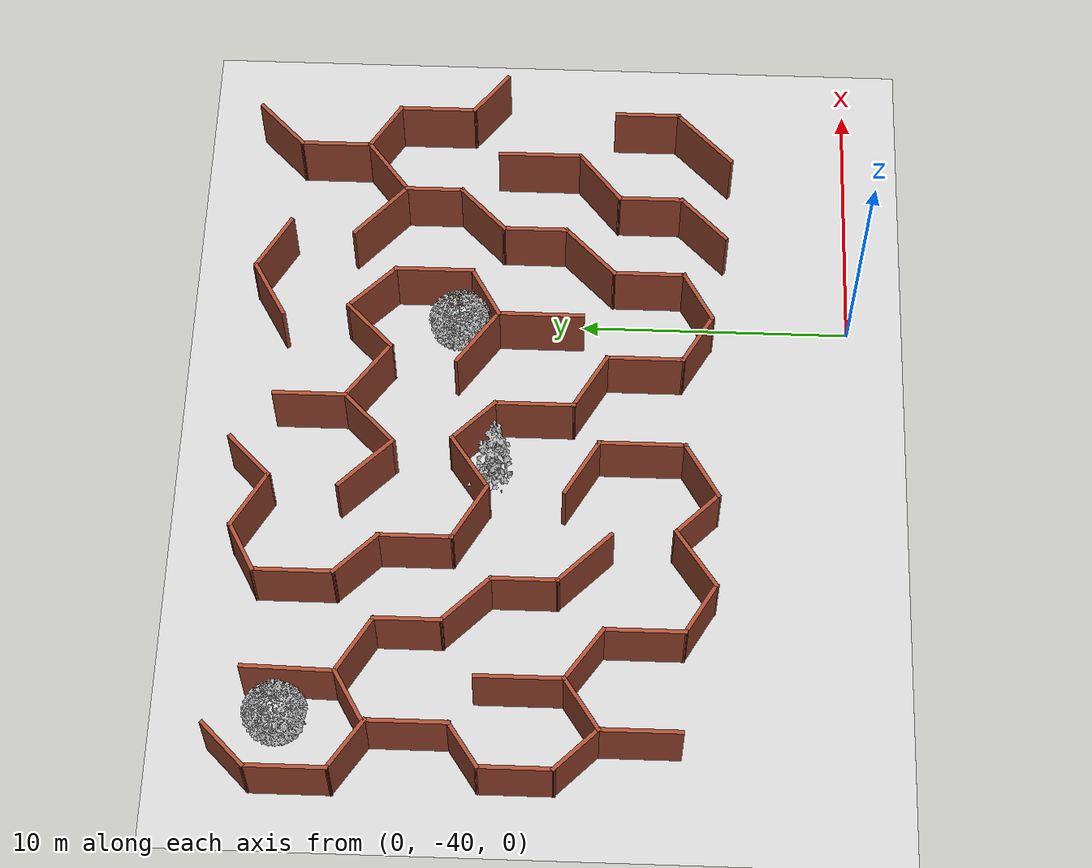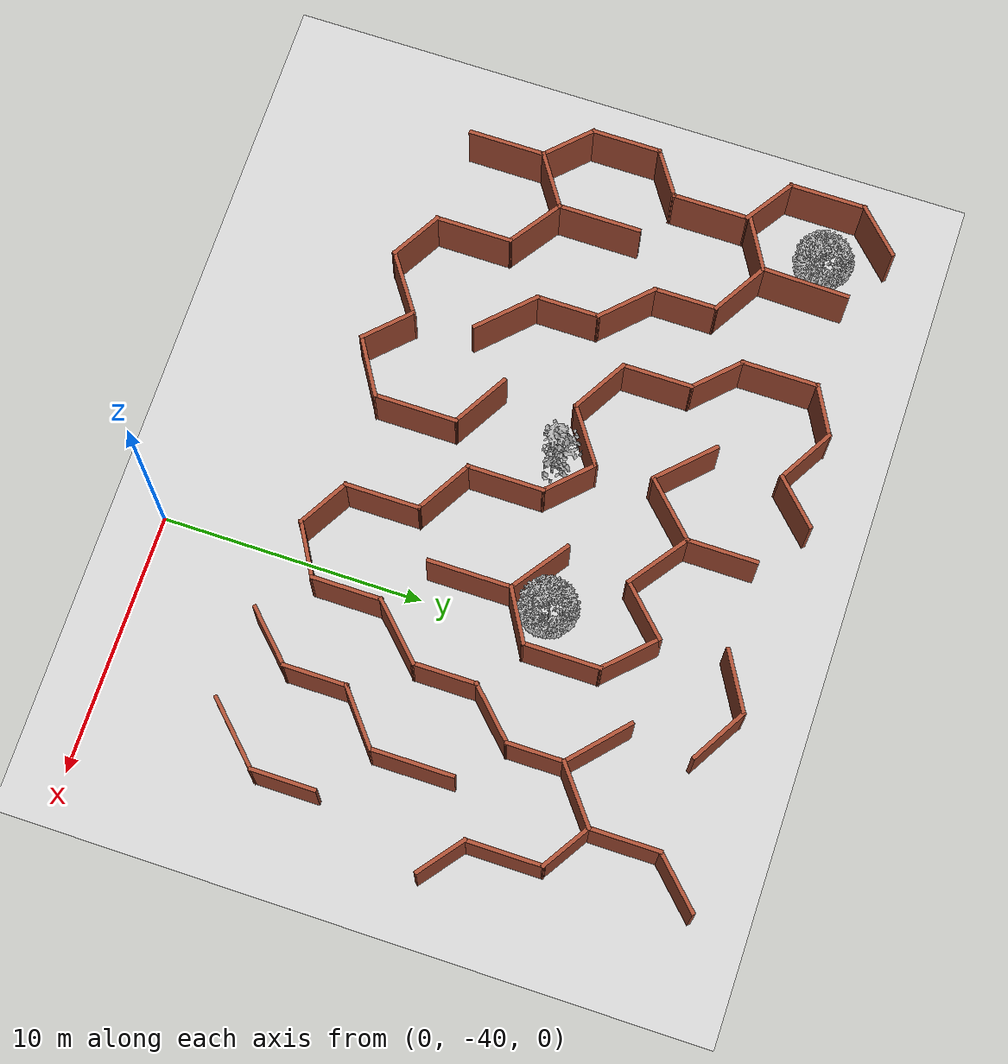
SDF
<sdf version="1.6">
 <world name="default">
  <model name="maze_rect_3">
   <pose>4e-06 -9.9e-05 0 0 -0 1.57001</pose>
   <link name="Wall_464">
    <collision name="Wall_464_Collision">
     <geometry><box><size>2.20335 0.15 2.5</size></box></geometry>
     <pose>0 0 1.25 0 -0 0</pose>
    </collision>
    <visual name="Wall_464_Visual">
     <pose>0 0 1.25 0 -0 0</pose>
     <geometry><box><size>2.20335 0.15 2.5</size></box></geometry>
     <material>
      <script><uri>file://media/materials/scripts/gazebo.material</uri><name>Gazebo/Bricks</name></script>
      <ambient>1 1 1 1</ambient>
     </material>
     <meta><layer>0</layer></meta>
    </visual>
    <pose>-22.1941 -7.33195 0 0 -0 1.01213</pose>
   </link>
   <link name="Wall_465">
    <collision name="Wall_465_Collision">
     <geometry><box><size>2.75 0.15 2.5</size></box></geometry>
     <pose>0 0 1.25 0 -0 0</pose>
    </collision>
    <visual name="Wall_465_Visual">
     <pose>0 0 1.25 0 -0 0</pose>
     <geometry><box><size>2.75 0.15 2.5</size></box></geometry>
     <material>
      <script><uri>file://media/materials/scripts/gazebo.material</uri><name>Gazebo/Bricks</name></script>
      <ambient>1 1 1 1</ambient>
     </material>
     <meta><layer>0</layer></meta>
    </visual>
    <pose>-20.3499 -6.46136 0 0 -0 0</pose>
   </link>
   <link name="Wall_466">
    <collision name="Wall_466_Collision">
     <geometry><box><size>2.5 0.15 2.5</size></box></geometry>
     <pose>0 0 1.25 0 -0 0</pose>
    </collision>
    <visual name="Wall_466_Visual">
     <pose>0 0 1.25 0 -0 0</pose>
     <geometry><box><size>2.5 0.15 2.5</size></box></geometry>
     <material>
      <script><uri>file://media/materials/scripts/gazebo.material</uri><name>Gazebo/Bricks</name></script>
      <ambient>1 1 1 1</ambient>
     </material>
     <meta><layer>0</layer></meta>
    </visual>
    <pose>-18.2191 -7.29221 0 0 -0 -0.785398</pose>
   </link>
   <link name="Wall_486">
    <collision name="Wall_486_Collision">
     <geometry><box><size>2.5 0.15 2.5</size></box></geometry>
     <pose>0 0 1.25 0 -0 0</pose>
    </collision>
    <visual name="Wall_486_Visual">
     <pose>0 0 1.25 0 -0 0</pose>
     <geometry><box><size>2.5 0.15 2.5</size></box></geometry>
     <material>
      <script><uri>file://media/materials/scripts/gazebo.material</uri><name>Gazebo/Bricks</name></script>
      <ambient>1 1 1 1</ambient>
     </material>
     <meta><layer>0</layer></meta>
    </visual>
    <pose>-18.3255 -1.92642 0 0 -0 1.0472</pose>
   </link>
   <link name="Wall_487">
    <collision name="Wall_487_Collision">
     <geometry><box><size>2.5 0.15 2.5</size></box></geometry>
     <pose>0 0 1.25 0 -0 0</pose>
    </collision>
    <visual name="Wall_487_Visual">
     <pose>0 0 1.25 0 -0 0</pose>
     <geometry><box><size>2.5 0.15 2.5</size></box></geometry>
     <material>
      <script><uri>file://media/materials/scripts/gazebo.material</uri><name>Gazebo/Bricks</name></script>
      <ambient>1 1 1 1</ambient>
     </material>
     <meta><layer>0</layer></meta>
    </visual>
    <pose>-18.3255 0.108739 0 0 -0 2.0944</pose>
   </link>
   <link name="Wall_534">
    <collision name="Wall_534_Collision">
     <geometry><box><size>2.14672 0.15 2.5</size></box></geometry>
     <pose>0 0 1.25 0 -0 0</pose>
    </collision>
    <visual name="Wall_534_Visual">
     <pose>0 0 1.25 0 -0 0</pose>
     <geometry><box><size>2.14672 0.15 2.5</size></box></geometry>
     <material>
      <script><uri>file://media/materials/scripts/gazebo.material</uri><name>Gazebo/Bricks</name></script>
      <ambient>1 1 1 1</ambient>
     </material>
     <meta><layer>0</layer></meta>
    </visual>
    <pose>-26.1824 -8.99348 0 0 -0 0.914495</pose>
   </link>
   <link name="Wall_535">
    <collision name="Wall_535_Collision">
     <geometry><box><size>3 0.15 2.5</size></box></geometry>
     <pose>0 0 1.25 0 -0 0</pose>
    </collision>
    <visual name="Wall_535_Visual">
     <pose>0 0 1.25 0 -0 0</pose>
     <geometry><box><size>3 0.15 2.5</size></box></geometry>
     <material>
      <script><uri>file://media/materials/scripts/gazebo.material</uri><name>Gazebo/Bricks</name></script>
      <ambient>1 1 1 1</ambient>
     </material>
     <meta><layer>0</layer></meta>
    </visual>
    <pose>-24.1482 -8.20252 0 0 -0 0</pose>
   </link>
   <link name="Wall_540">
    <collision name="Wall_540_Collision">
     <geometry><box><size>2.5 0.15 2.5</size></box></geometry>
     <pose>0 0 1.25 0 -0 0</pose>
    </collision>
    <visual name="Wall_540_Visual">
     <pose>0 0 1.25 0 -0 0</pose>
     <geometry><box><size>2.5 0.15 2.5</size></box></geometry>
     <material>
      <script><uri>file://media/materials/scripts/gazebo.material</uri><name>Gazebo/Bricks</name></script>
      <ambient>1 1 1 1</ambient>
     </material>
     <meta><layer>0</layer></meta>
    </visual>
    <pose>-34.4329 -3.51756 0 0 -0 -0.785398</pose>
   </link>
   <link name="Wall_542">
    <collision name="Wall_542_Collision">
     <geometry><box><size>3 0.15 2.5</size></box></geometry>
     <pose>0 0 1.25 0 -0 0</pose>
    </collision>
    <visual name="Wall_542_Visual">
     <pose>0 0 1.25 0 -0 0</pose>
     <geometry><box><size>3 0.15 2.5</size></box></geometry>
     <material>
      <script><uri>file://media/materials/scripts/gazebo.material</uri><name>Gazebo/Bricks</name></script>
      <ambient>1 1 1 1</ambient>
     </material>
     <meta><layer>0</layer></meta>
    </visual>
    <pose>-34.4329 -7.19452 0 0 -0 -0.785398</pose>
   </link>
   <link name="Wall_543">
    <collision name="Wall_543_Collision">
     <geometry><box><size>2.5 0.15 2.5</size></box></geometry>
     <pose>0 0 1.25 0 -0 0</pose>
    </collision>
    <visual name="Wall_543_Visual">
     <pose>0 0 1.25 0 -0 0</pose>
     <geometry><box><size>2.5 0.15 2.5</size></box></geometry>
     <material>
      <script><uri>file://media/materials/scripts/gazebo.material</uri><name>Gazebo/Bricks</name></script>
      <ambient>1 1 1 1</ambient>
     </material>
     <meta><layer>0</layer></meta>
    </visual>
    <pose>-32.2503 -8.20215 0 0 -0 0</pose>
   </link>
   <link name="Wall_547">
    <collision name="Wall_547_Collision">
     <geometry><box><size>3.15852 0.15 2.5</size></box></geometry>
     <pose>0 0 1.25 0 -0 0</pose>
    </collision>
    <visual name="Wall_547_Visual">
     <pose>0 0 1.25 0 -0 0</pose>
     <geometry><box><size>3.15852 0.15 2.5</size></box></geometry>
     <material>
      <script><uri>file://media/materials/scripts/gazebo.material</uri><name>Gazebo/Bricks</name></script>
      <ambient>1 1 1 1</ambient>
     </material>
     <meta><layer>0</layer></meta>
    </visual>
    <pose>-28.1709 -6.21856 0 0 -0 3.14159</pose>
   </link>
   <link name="Wall_548">
    <collision name="Wall_548_Collision">
     <geometry><box><size>2.56699 0.15 2.5</size></box></geometry>
     <pose>0 0 1.25 0 -0 0</pose>
    </collision>
    <visual name="Wall_548_Visual">
     <pose>0 0 1.25 0 -0 0</pose>
     <geometry><box><size>2.56699 0.15 2.5</size></box></geometry>
     <material>
      <script><uri>file://media/materials/scripts/gazebo.material</uri><name>Gazebo/Bricks</name></script>
      <ambient>1 1 1 1</ambient>
     </material>
     <meta><layer>0</layer></meta>
    </visual>
    <pose>-30.4865 -5.28349 0 0 -0 2.25685</pose>
   </link>
   <link name="Wall_549">
    <collision name="Wall_549_Collision">
     <geometry><box><size>2.5 0.15 2.5</size></box></geometry>
     <pose>0 0 1.25 0 -0 0</pose>
    </collision>
    <visual name="Wall_549_Visual">
     <pose>0 0 1.25 0 -0 0</pose>
     <geometry><box><size>2.5 0.15 2.5</size></box></geometry>
     <material>
      <script><uri>file://media/materials/scripts/gazebo.material</uri><name>Gazebo/Bricks</name></script>
      <ambient>1 1 1 1</ambient>
     </material>
     <meta><layer>0</layer></meta>
    </visual>
    <pose>-32.4271 -4.34841 0 0 -0 3.14159</pose>
   </link>
   <link name="Wall_55">
    <collision name="Wall_55_Collision">
     <geometry><box><size>3 0.15 2.5</size></box></geometry>
     <pose>0 0 1.25 0 -0 0</pose>
    </collision>
    <visual name="Wall_55_Visual">
     <pose>0 0 1.25 0 -0 0</pose>
     <geometry><box><size>3 0.15 2.5</size></box></geometry>
     <material>
      <script><uri>file://media/materials/scripts/gazebo.material</uri><name>Gazebo/Bricks</name></script>
      <ambient>1 1 1 1</ambient>
     </material>
     <meta><layer>0</layer></meta>
    </visual>
    <pose>-32.4179 17.2051 0 0 -0 0</pose>
   </link>
   <link name="Wall_56">
    <collision name="Wall_56_Collision">
     <geometry><box><size>2.25 0.15 2.5</size></box></geometry>
     <pose>0 0 1.25 0 -0 0</pose>
    </collision>
    <visual name="Wall_56_Visual">
     <pose>0 0 1.25 0 -0 0</pose>
     <geometry><box><size>2.25 0.15 2.5</size></box></geometry>
     <material>
      <script><uri>file://media/materials/scripts/gazebo.material</uri><name>Gazebo/Bricks</name></script>
      <ambient>1 1 1 1</ambient>
     </material>
     <meta><layer>0</layer></meta>
    </visual>
    <pose>-30.2504 17.9476 0 0 -0 0.785398</pose>
   </link>
   <link name="Wall_57">
    <collision name="Wall_57_Collision">
     <geometry><box><size>2.75 0.15 2.5</size></box></geometry>
     <pose>0 0 1.25 0 -0 0</pose>
    </collision>
    <visual name="Wall_57_Visual">
     <pose>0 0 1.25 0 -0 0</pose>
     <geometry><box><size>2.75 0.15 2.5</size></box></geometry>
     <material>
      <script><uri>file://media/materials/scripts/gazebo.material</uri><name>Gazebo/Bricks</name></script>
      <ambient>1 1 1 1</ambient>
     </material>
     <meta><layer>0</layer></meta>
    </visual>
    <pose>-28.208 18.69 0 0 -0 0</pose>
   </link>
   <link name="Wall_58">
    <collision name="Wall_58_Collision">
     <geometry><box><size>2.02861 0.15 2.5</size></box></geometry>
     <pose>0 0 1.25 0 -0 0</pose>
    </collision>
    <visual name="Wall_58_Visual">
     <pose>0 0 1.25 0 -0 0</pose>
     <geometry><box><size>2.02861 0.15 2.5</size></box></geometry>
     <material>
      <script><uri>file://media/materials/scripts/gazebo.material</uri><name>Gazebo/Bricks</name></script>
      <ambient>1 1 1 1</ambient>
     </material>
     <meta><layer>0</layer></meta>
    </visual>
    <pose>-26.383 17.9112 0 0 -0 -0.97771</pose>
   </link>
   <link name="Wall_59">
    <collision name="Wall_59_Collision">
     <geometry><box><size>3 0.15 2.5</size></box></geometry>
     <pose>0 0 1.25 0 -0 0</pose>
    </collision>
    <visual name="Wall_59_Visual">
     <pose>0 0 1.25 0 -0 0</pose>
     <geometry><box><size>3 0.15 2.5</size></box></geometry>
     <material>
      <script><uri>file://media/materials/scripts/gazebo.material</uri><name>Gazebo/Bricks</name></script>
      <ambient>1 1 1 1</ambient>
     </material>
     <meta><layer>0</layer></meta>
    </visual>
    <pose>-24.4503 17.1323 0 0 -0 0</pose>
   </link>
   <link name="Wall_60">
    <collision name="Wall_60_Collision">
     <geometry><box><size>2.27808 0.15 2.5</size></box></geometry>
     <pose>0 0 1.25 0 -0 0</pose>
    </collision>
    <visual name="Wall_60_Visual">
     <pose>0 0 1.25 0 -0 0</pose>
     <geometry><box><size>2.27808 0.15 2.5</size></box></geometry>
     <material>
      <script><uri>file://media/materials/scripts/gazebo.material</uri><name>Gazebo/Bricks</name></script>
      <ambient>1 1 1 1</ambient>
     </material>
     <meta><layer>0</layer></meta>
    </visual>
    <pose>-22.4205 18.0194 0 0 -0 0.985867</pose>
   </link>
   <link name="Wall_608">
    <collision name="Wall_608_Collision">
     <geometry><box><size>2.25 0.15 2.5</size></box></geometry>
     <pose>0 0 1.25 0 -0 0</pose>
    </collision>
    <visual name="Wall_608_Visual">
     <pose>0 0 1.25 0 -0 0</pose>
     <geometry><box><size>2.25 0.15 2.5</size></box></geometry>
     <material>
      <script><uri>file://media/materials/scripts/gazebo.material</uri><name>Gazebo/Bricks</name></script>
      <ambient>1 1 1 1</ambient>
     </material>
     <meta><layer>0</layer></meta>
    </visual>
    <pose>-34.4516 12.5775 0 0 -0 1.0472</pose>
   </link>
   <link name="Wall_609">
    <collision name="Wall_609_Collision">
     <geometry><box><size>3 0.15 2.5</size></box></geometry>
     <pose>0 0 1.25 0 -0 0</pose>
    </collision>
    <visual name="Wall_609_Visual">
     <pose>0 0 1.25 0 -0 0</pose>
     <geometry><box><size>3 0.15 2.5</size></box></geometry>
     <material>
      <script><uri>file://media/materials/scripts/gazebo.material</uri><name>Gazebo/Bricks</name></script>
      <ambient>1 1 1 1</ambient>
     </material>
     <meta><layer>0</layer></meta>
    </visual>
    <pose>-32.5016 13.4868 0 0 -0 0</pose>
   </link>
   <link name="Wall_61">
    <collision name="Wall_61_Collision">
     <geometry><box><size>3 0.15 2.5</size></box></geometry>
     <pose>0 0 1.25 0 -0 0</pose>
    </collision>
    <visual name="Wall_61_Visual">
     <pose>0 0 1.25 0 -0 0</pose>
     <geometry><box><size>3 0.15 2.5</size></box></geometry>
     <material>
      <script><uri>file://media/materials/scripts/gazebo.material</uri><name>Gazebo/Bricks</name></script>
      <ambient>1 1 1 1</ambient>
     </material>
     <meta><layer>0</layer></meta>
    </visual>
    <pose>-20.408 18.9065 0 0 -0 0</pose>
   </link>
   <link name="Wall_610">
    <collision name="Wall_610_Collision">
     <geometry><box><size>2.44861 0.15 2.5</size></box></geometry>
     <pose>0 0 1.25 0 -0 0</pose>
    </collision>
    <visual name="Wall_610_Visual">
     <pose>0 0 1.25 0 -0 0</pose>
     <geometry><box><size>2.44861 0.15 2.5</size></box></geometry>
     <material>
      <script><uri>file://media/materials/scripts/gazebo.material</uri><name>Gazebo/Bricks</name></script>
      <ambient>1 1 1 1</ambient>
     </material>
     <meta><layer>0</layer></meta>
    </visual>
    <pose>-30.4228 14.432 0 0 -0 0.965609</pose>
   </link>
   <link name="Wall_611">
    <collision name="Wall_611_Collision">
     <geometry><box><size>2.34991 0.15 2.5</size></box></geometry>
     <pose>0 0 1.25 0 -0 0</pose>
    </collision>
    <visual name="Wall_611_Visual">
     <pose>0 0 1.25 0 -0 0</pose>
     <geometry><box><size>2.34991 0.15 2.5</size></box></geometry>
     <material>
      <script><uri>file://media/materials/scripts/gazebo.material</uri><name>Gazebo/Bricks</name></script>
      <ambient>1 1 1 1</ambient>
     </material>
     <meta><layer>0</layer></meta>
    </visual>
    <pose>-30.3809 16.2911 0 0 -0 2.16081</pose>
   </link>
   <link name="Wall_613">
    <collision name="Wall_613_Collision">
     <geometry><box><size>3.25 0.15 2.5</size></box></geometry>
     <pose>0 0 1.25 0 -0 0</pose>
    </collision>
    <visual name="Wall_613_Visual">
     <pose>0 0 1.25 0 -0 0</pose>
     <geometry><box><size>3.25 0.15 2.5</size></box></geometry>
     <material>
      <script><uri>file://media/materials/scripts/gazebo.material</uri><name>Gazebo/Bricks</name></script>
      <ambient>1 1 1 1</ambient>
     </material>
     <meta><layer>0</layer></meta>
    </visual>
    <pose>-28.2189 15.3771 0 0 -0 3.14159</pose>
   </link>
   <link name="Wall_617">
    <collision name="Wall_617_Collision">
     <geometry><box><size>2.25 0.15 2.5</size></box></geometry>
     <pose>0 0 1.25 0 -0 0</pose>
    </collision>
    <visual name="Wall_617_Visual">
     <pose>0 0 1.25 0 -0 0</pose>
     <geometry><box><size>2.25 0.15 2.5</size></box></geometry>
     <material>
      <script><uri>file://media/materials/scripts/gazebo.material</uri><name>Gazebo/Bricks</name></script>
      <ambient>1 1 1 1</ambient>
     </material>
     <meta><layer>0</layer></meta>
    </visual>
    <pose>-34.2983 8.89218 0 0 -0 0.785398</pose>
   </link>
   <link name="Wall_618">
    <collision name="Wall_618_Collision">
     <geometry><box><size>2.63065 0.15 2.5</size></box></geometry>
     <pose>0 0 1.25 0 -0 0</pose>
    </collision>
    <visual name="Wall_618_Visual">
     <pose>0 0 1.25 0 -0 0</pose>
     <geometry><box><size>2.63065 0.15 2.5</size></box></geometry>
     <material>
      <script><uri>file://media/materials/scripts/gazebo.material</uri><name>Gazebo/Bricks</name></script>
      <ambient>1 1 1 1</ambient>
     </material>
     <meta><layer>0</layer></meta>
    </visual>
    <pose>-34.2662 10.6514 0 0 -0 2.18064</pose>
   </link>
   <link name="Wall_620">
    <collision name="Wall_620_Collision">
     <geometry><box><size>2.5 0.15 2.5</size></box></geometry>
     <pose>0 0 1.25 0 -0 0</pose>
    </collision>
    <visual name="Wall_620_Visual">
     <pose>0 0 1.25 0 -0 0</pose>
     <geometry><box><size>2.5 0.15 2.5</size></box></geometry>
     <material>
      <script><uri>file://media/materials/scripts/gazebo.material</uri><name>Gazebo/Bricks</name></script>
      <ambient>1 1 1 1</ambient>
     </material>
     <meta><layer>0</layer></meta>
    </visual>
    <pose>-30.1495 7.18688 0 0 -0 -2.0944</pose>
   </link>
   <link name="Wall_621">
    <collision name="Wall_621_Collision">
     <geometry><box><size>3.25 0.15 2.5</size></box></geometry>
     <pose>0 0 1.25 0 -0 0</pose>
    </collision>
    <visual name="Wall_621_Visual">
     <pose>0 0 1.25 0 -0 0</pose>
     <geometry><box><size>3.25 0.15 2.5</size></box></geometry>
     <material>
      <script><uri>file://media/materials/scripts/gazebo.material</uri><name>Gazebo/Bricks</name></script>
      <ambient>1 1 1 1</ambient>
     </material>
     <meta><layer>0</layer></meta>
    </visual>
    <pose>-32.287 6.1693 0 0 -0 3.14159</pose>
   </link>
   <link name="Wall_622">
    <collision name="Wall_622_Collision">
     <geometry><box><size>2.46755 0.15 2.5</size></box></geometry>
     <pose>0 0 1.25 0 -0 0</pose>
    </collision>
    <visual name="Wall_622_Visual">
     <pose>0 0 1.25 0 -0 0</pose>
     <geometry><box><size>2.46755 0.15 2.5</size></box></geometry>
     <material>
      <script><uri>file://media/materials/scripts/gazebo.material</uri><name>Gazebo/Bricks</name></script>
      <ambient>1 1 1 1</ambient>
     </material>
     <meta><layer>0</layer></meta>
    </visual>
    <pose>-34.4389 7.15951 0 0 -0 2.11695</pose>
   </link>
   <link name="Wall_624">
    <collision name="Wall_624_Collision">
     <geometry><box><size>2.75 0.15 2.5</size></box></geometry>
     <pose>0 0 1.25 0 -0 0</pose>
    </collision>
    <visual name="Wall_624_Visual">
     <pose>0 0 1.25 0 -0 0</pose>
     <geometry><box><size>2.75 0.15 2.5</size></box></geometry>
     <material>
      <script><uri>file://media/materials/scripts/gazebo.material</uri><name>Gazebo/Bricks</name></script>
      <ambient>1 1 1 1</ambient>
     </material>
     <meta><layer>0</layer></meta>
    </visual>
    <pose>-30.3422 10.7459 0 0 -0 0.785398</pose>
   </link>
   <link name="Wall_625">
    <collision name="Wall_625_Collision">
     <geometry><box><size>2.5 0.15 2.5</size></box></geometry>
     <pose>0 0 1.25 0 -0 0</pose>
    </collision>
    <visual name="Wall_625_Visual">
     <pose>0 0 1.25 0 -0 0</pose>
     <geometry><box><size>2.5 0.15 2.5</size></box></geometry>
     <material>
      <script><uri>file://media/materials/scripts/gazebo.material</uri><name>Gazebo/Bricks</name></script>
      <ambient>1 1 1 1</ambient>
     </material>
     <meta><layer>0</layer></meta>
    </visual>
    <pose>-28.2479 11.6652 0 0 -0 0</pose>
   </link>
   <link name="Wall_626">
    <collision name="Wall_626_Collision">
     <geometry><box><size>2.5 0.15 2.5</size></box></geometry>
     <pose>0 0 1.25 0 -0 0</pose>
    </collision>
    <visual name="Wall_626_Visual">
     <pose>0 0 1.25 0 -0 0</pose>
     <geometry><box><size>2.5 0.15 2.5</size></box></geometry>
     <material>
      <script><uri>file://media/materials/scripts/gazebo.material</uri><name>Gazebo/Bricks</name></script>
      <ambient>1 1 1 1</ambient>
     </material>
     <meta><layer>0</layer></meta>
    </visual>
    <pose>-26.2421 12.496 0 0 -0 0.785398</pose>
   </link>
   <link name="Wall_627">
    <collision name="Wall_627_Collision">
     <geometry><box><size>2.5 0.15 2.5</size></box></geometry>
     <pose>0 0 1.25 0 -0 0</pose>
    </collision>
    <visual name="Wall_627_Visual">
     <pose>0 0 1.25 0 -0 0</pose>
     <geometry><box><size>2.5 0.15 2.5</size></box></geometry>
     <material>
      <script><uri>file://media/materials/scripts/gazebo.material</uri><name>Gazebo/Bricks</name></script>
      <ambient>1 1 1 1</ambient>
     </material>
     <meta><layer>0</layer></meta>
    </visual>
    <pose>-24.2362 13.3269 0 0 -0 0</pose>
   </link>
   <link name="Wall_628">
    <collision name="Wall_628_Collision">
     <geometry><box><size>2.51758 0.15 2.5</size></box></geometry>
     <pose>0 0 1.25 0 -0 0</pose>
    </collision>
    <visual name="Wall_628_Visual">
     <pose>0 0 1.25 0 -0 0</pose>
     <geometry><box><size>2.51758 0.15 2.5</size></box></geometry>
     <material>
      <script><uri>file://media/materials/scripts/gazebo.material</uri><name>Gazebo/Bricks</name></script>
      <ambient>1 1 1 1</ambient>
     </material>
     <meta><layer>0</layer></meta>
    </visual>
    <pose>-22.4563 14.3445 0 0 -0 1.03447</pose>
   </link>
   <link name="Wall_63">
    <collision name="Wall_63_Collision">
     <geometry><box><size>2.25 0.15 2.5</size></box></geometry>
     <pose>0 0 1.25 0 -0 0</pose>
    </collision>
    <visual name="Wall_63_Visual">
     <pose>0 0 1.25 0 -0 0</pose>
     <geometry><box><size>2.25 0.15 2.5</size></box></geometry>
     <material>
      <script><uri>file://media/materials/scripts/gazebo.material</uri><name>Gazebo/Bricks</name></script>
      <ambient>1 1 1 1</ambient>
     </material>
     <meta><layer>0</layer></meta>
    </visual>
    <pose>-18.2405 18.1641 0 0 -0 -0.785398</pose>
   </link>
   <link name="Wall_630">
    <collision name="Wall_630_Collision">
     <geometry><box><size>2.25 0.15 2.5</size></box></geometry>
     <pose>0 0 1.25 0 -0 0</pose>
    </collision>
    <visual name="Wall_630_Visual">
     <pose>0 0 1.25 0 -0 0</pose>
     <geometry><box><size>2.25 0.15 2.5</size></box></geometry>
     <material>
      <script><uri>file://media/materials/scripts/gazebo.material</uri><name>Gazebo/Bricks</name></script>
      <ambient>1 1 1 1</ambient>
     </material>
     <meta><layer>0</layer></meta>
    </visual>
    <pose>-22.3938 16.2714 0 0 -0 2.0944</pose>
   </link>
   <link name="Wall_632">
    <collision name="Wall_632_Collision">
     <geometry><box><size>3.3934 0.15 2.5</size></box></geometry>
     <pose>0 0 1.25 0 -0 0</pose>
    </collision>
    <visual name="Wall_632_Visual">
     <pose>0 0 1.25 0 -0 0</pose>
     <geometry><box><size>3.3934 0.15 2.5</size></box></geometry>
     <material>
      <script><uri>file://media/materials/scripts/gazebo.material</uri><name>Gazebo/Bricks</name></script>
      <ambient>1 1 1 1</ambient>
     </material>
     <meta><layer>0</layer></meta>
    </visual>
    <pose>-20.2302 15.3216 0 0 -0 3.11665</pose>
   </link>
   <link name="Wall_636">
    <collision name="Wall_636_Collision">
     <geometry><box><size>2.88745 0.15 2.5</size></box></geometry>
     <pose>0 0 1.25 0 -0 0</pose>
    </collision>
    <visual name="Wall_636_Visual">
     <pose>0 0 1.25 0 -0 0</pose>
     <geometry><box><size>2.88745 0.15 2.5</size></box></geometry>
     <material>
      <script><uri>file://media/materials/scripts/gazebo.material</uri><name>Gazebo/Bricks</name></script>
      <ambient>1 1 1 1</ambient>
     </material>
     <meta><layer>0</layer></meta>
    </visual>
    <pose>-22.2573 -3.49538 0 0 -0 -2.30521</pose>
   </link>
   <link name="Wall_637">
    <collision name="Wall_637_Collision">
     <geometry><box><size>2.62535 0.15 2.5</size></box></geometry>
     <pose>0 0 1.25 0 -0 0</pose>
    </collision>
    <visual name="Wall_637_Visual">
     <pose>0 0 1.25 0 -0 0</pose>
     <geometry><box><size>2.62535 0.15 2.5</size></box></geometry>
     <material>
      <script><uri>file://media/materials/scripts/gazebo.material</uri><name>Gazebo/Bricks</name></script>
      <ambient>1 1 1 1</ambient>
     </material>
     <meta><layer>0</layer></meta>
    </visual>
    <pose>-22.4122 -5.48632 0 0 -0 -0.907234</pose>
   </link>
   <link name="Wall_645">
    <collision name="Wall_645_Collision">
     <geometry><box><size>2.25 0.15 2.5</size></box></geometry>
     <pose>0 0 1.25 0 -0 0</pose>
    </collision>
    <visual name="Wall_645_Visual">
     <pose>0 0 1.25 0 -0 0</pose>
     <geometry><box><size>2.25 0.15 2.5</size></box></geometry>
     <material>
      <script><uri>file://media/materials/scripts/gazebo.material</uri><name>Gazebo/Bricks</name></script>
      <ambient>1 1 1 1</ambient>
     </material>
     <meta><layer>0</layer></meta>
    </visual>
    <pose>-34.2497 1.71688 0 0 -0 -2.0944</pose>
   </link>
   <link name="Wall_646">
    <collision name="Wall_646_Collision">
     <geometry><box><size>2.25 0.15 2.5</size></box></geometry>
     <pose>0 0 1.25 0 -0 0</pose>
    </collision>
    <visual name="Wall_646_Visual">
     <pose>0 0 1.25 0 -0 0</pose>
     <geometry><box><size>2.25 0.15 2.5</size></box></geometry>
     <material>
      <script><uri>file://media/materials/scripts/gazebo.material</uri><name>Gazebo/Bricks</name></script>
      <ambient>1 1 1 1</ambient>
     </material>
     <meta><layer>0</layer></meta>
    </visual>
    <pose>-34.2497 -0.101774 0 0 -0 -1.0472</pose>
   </link>
   <link name="Wall_647">
    <collision name="Wall_647_Collision">
     <geometry><box><size>2.75 0.15 2.5</size></box></geometry>
     <pose>0 0 1.25 0 -0 0</pose>
    </collision>
    <visual name="Wall_647_Visual">
     <pose>0 0 1.25 0 -0 0</pose>
     <geometry><box><size>2.75 0.15 2.5</size></box></geometry>
     <material>
      <script><uri>file://media/materials/scripts/gazebo.material</uri><name>Gazebo/Bricks</name></script>
      <ambient>1 1 1 1</ambient>
     </material>
     <meta><layer>0</layer></meta>
    </visual>
    <pose>-32.4247 -1.0111 0 0 -0 0</pose>
   </link>
   <link name="Wall_648">
    <collision name="Wall_648_Collision">
     <geometry><box><size>2.75 0.15 2.5</size></box></geometry>
     <pose>0 0 1.25 0 -0 0</pose>
    </collision>
    <visual name="Wall_648_Visual">
     <pose>0 0 1.25 0 -0 0</pose>
     <geometry><box><size>2.75 0.15 2.5</size></box></geometry>
     <material>
      <script><uri>file://media/materials/scripts/gazebo.material</uri><name>Gazebo/Bricks</name></script>
      <ambient>1 1 1 1</ambient>
     </material>
     <meta><layer>0</layer></meta>
    </visual>
    <pose>-30.2055 -1.93034 0 0 -0 -0.785398</pose>
   </link>
   <link name="Wall_649">
    <collision name="Wall_649_Collision">
     <geometry><box><size>2.5 0.15 2.5</size></box></geometry>
     <pose>0 0 1.25 0 -0 0</pose>
    </collision>
    <visual name="Wall_649_Visual">
     <pose>0 0 1.25 0 -0 0</pose>
     <geometry><box><size>2.5 0.15 2.5</size></box></geometry>
     <material>
      <script><uri>file://media/materials/scripts/gazebo.material</uri><name>Gazebo/Bricks</name></script>
      <ambient>1 1 1 1</ambient>
     </material>
     <meta><layer>0</layer></meta>
    </visual>
    <pose>-28.1113 -2.84958 0 0 -0 0</pose>
   </link>
   <link name="Wall_650">
    <collision name="Wall_650_Collision">
     <geometry><box><size>2.5 0.15 2.5</size></box></geometry>
     <pose>0 0 1.25 0 -0 0</pose>
    </collision>
    <visual name="Wall_650_Visual">
     <pose>0 0 1.25 0 -0 0</pose>
     <geometry><box><size>2.5 0.15 2.5</size></box></geometry>
     <material>
      <script><uri>file://media/materials/scripts/gazebo.material</uri><name>Gazebo/Bricks</name></script>
      <ambient>1 1 1 1</ambient>
     </material>
     <meta><layer>0</layer></meta>
    </visual>
    <pose>-26.1054 -3.68043 0 0 -0 -0.785398</pose>
   </link>
   <link name="Wall_651">
    <collision name="Wall_651_Collision">
     <geometry><box><size>2.25 0.15 2.5</size></box></geometry>
     <pose>0 0 1.25 0 -0 0</pose>
    </collision>
    <visual name="Wall_651_Visual">
     <pose>0 0 1.25 0 -0 0</pose>
     <geometry><box><size>2.25 0.15 2.5</size></box></geometry>
     <material>
      <script><uri>file://media/materials/scripts/gazebo.material</uri><name>Gazebo/Bricks</name></script>
      <ambient>1 1 1 1</ambient>
     </material>
     <meta><layer>0</layer></meta>
    </visual>
    <pose>-24.2246 -4.51128 0 0 -0 0</pose>
   </link>
   <link name="Wall_666">
    <collision name="Wall_666_Collision">
     <geometry><box><size>3 0.15 2.5</size></box></geometry>
     <pose>0 0 1.25 0 -0 0</pose>
    </collision>
    <visual name="Wall_666_Visual">
     <pose>0 0 1.25 0 -0 0</pose>
     <geometry><box><size>3 0.15 2.5</size></box></geometry>
     <material>
      <script><uri>file://media/materials/scripts/gazebo.material</uri><name>Gazebo/Bricks</name></script>
      <ambient>1 1 1 1</ambient>
     </material>
     <meta><layer>0</layer></meta>
    </visual>
    <pose>-20.106 11.6016 0 0 -0 3.14159</pose>
   </link>
   <link name="Wall_667">
    <collision name="Wall_667_Collision">
     <geometry><box><size>2.25 0.15 2.5</size></box></geometry>
     <pose>0 0 1.25 0 -0 0</pose>
    </collision>
    <visual name="Wall_667_Visual">
     <pose>0 0 1.25 0 -0 0</pose>
     <geometry><box><size>2.25 0.15 2.5</size></box></geometry>
     <material>
      <script><uri>file://media/materials/scripts/gazebo.material</uri><name>Gazebo/Bricks</name></script>
      <ambient>1 1 1 1</ambient>
     </material>
     <meta><layer>0</layer></meta>
    </visual>
    <pose>-22.2734 10.8591 0 0 -0 -2.35619</pose>
   </link>
   <link name="Wall_668">
    <collision name="Wall_668_Collision">
     <geometry><box><size>2.75 0.15 2.5</size></box></geometry>
     <pose>0 0 1.25 0 -0 0</pose>
    </collision>
    <visual name="Wall_668_Visual">
     <pose>0 0 1.25 0 -0 0</pose>
     <geometry><box><size>2.75 0.15 2.5</size></box></geometry>
     <material>
      <script><uri>file://media/materials/scripts/gazebo.material</uri><name>Gazebo/Bricks</name></script>
      <ambient>1 1 1 1</ambient>
     </material>
     <meta><layer>0</layer></meta>
    </visual>
    <pose>-24.3159 10.1167 0 0 -0 3.14159</pose>
   </link>
   <link name="Wall_669">
    <collision name="Wall_669_Collision">
     <geometry><box><size>2.5 0.15 2.5</size></box></geometry>
     <pose>0 0 1.25 0 -0 0</pose>
    </collision>
    <visual name="Wall_669_Visual">
     <pose>0 0 1.25 0 -0 0</pose>
     <geometry><box><size>2.5 0.15 2.5</size></box></geometry>
     <material>
      <script><uri>file://media/materials/scripts/gazebo.material</uri><name>Gazebo/Bricks</name></script>
      <ambient>1 1 1 1</ambient>
     </material>
     <meta><layer>0</layer></meta>
    </visual>
    <pose>-26.2034 9.09908 0 0 -0 -2.0944</pose>
   </link>
   <link name="Wall_670">
    <collision name="Wall_670_Collision">
     <geometry><box><size>2.5158 0.15 2.5</size></box></geometry>
     <pose>0 0 1.25 0 -0 0</pose>
    </collision>
    <visual name="Wall_670_Visual">
     <pose>0 0 1.25 0 -0 0</pose>
     <geometry><box><size>2.5158 0.15 2.5</size></box></geometry>
     <material>
      <script><uri>file://media/materials/scripts/gazebo.material</uri><name>Gazebo/Bricks</name></script>
      <ambient>1 1 1 1</ambient>
     </material>
     <meta><layer>0</layer></meta>
    </visual>
    <pose>-26.1109 7.11357 0 0 -0 -0.958404</pose>
   </link>
   <link name="Wall_671">
    <collision name="Wall_671_Collision">
     <geometry><box><size>2.25 0.15 2.5</size></box></geometry>
     <pose>0 0 1.25 0 -0 0</pose>
    </collision>
    <visual name="Wall_671_Visual">
     <pose>0 0 1.25 0 -0 0</pose>
     <geometry><box><size>2.25 0.15 2.5</size></box></geometry>
     <material>
      <script><uri>file://media/materials/scripts/gazebo.material</uri><name>Gazebo/Bricks</name></script>
      <ambient>1 1 1 1</ambient>
     </material>
     <meta><layer>0</layer></meta>
    </visual>
    <pose>-26.1734 5.40317 0 0 -0 -2.35619</pose>
   </link>
   <link name="Wall_672">
    <collision name="Wall_672_Collision">
     <geometry><box><size>3 0.15 2.5</size></box></geometry>
     <pose>0 0 1.25 0 -0 0</pose>
    </collision>
    <visual name="Wall_672_Visual">
     <pose>0 0 1.25 0 -0 0</pose>
     <geometry><box><size>3 0.15 2.5</size></box></geometry>
     <material>
      <script><uri>file://media/materials/scripts/gazebo.material</uri><name>Gazebo/Bricks</name></script>
      <ambient>1 1 1 1</ambient>
     </material>
     <meta><layer>0</layer></meta>
    </visual>
    <pose>-28.3409 4.6607 0 0 -0 3.14159</pose>
   </link>
   <link name="Wall_673">
    <collision name="Wall_673_Collision">
     <geometry><box><size>2.5 0.15 2.5</size></box></geometry>
     <pose>0 0 1.25 0 -0 0</pose>
    </collision>
    <visual name="Wall_673_Visual">
     <pose>0 0 1.25 0 -0 0</pose>
     <geometry><box><size>2.5 0.15 2.5</size></box></geometry>
     <material>
      <script><uri>file://media/materials/scripts/gazebo.material</uri><name>Gazebo/Bricks</name></script>
      <ambient>1 1 1 1</ambient>
     </material>
     <meta><layer>0</layer></meta>
    </visual>
    <pose>-30.3534 3.64312 0 0 -0 -2.0944</pose>
   </link>
   <link name="Wall_676">
    <collision name="Wall_676_Collision">
     <geometry><box><size>2.93386 0.15 2.5</size></box></geometry>
     <pose>0 0 1.25 0 -0 0</pose>
    </collision>
    <visual name="Wall_676_Visual">
     <pose>0 0 1.25 0 -0 0</pose>
     <geometry><box><size>2.93386 0.15 2.5</size></box></geometry>
     <material>
      <script><uri>file://media/materials/scripts/gazebo.material</uri><name>Gazebo/Bricks</name></script>
      <ambient>1 1 1 1</ambient>
     </material>
     <meta><layer>0</layer></meta>
    </visual>
    <pose>-32.3328 2.62588 0 0 -0 3.14135</pose>
   </link>
   <link name="Wall_679">
    <collision name="Wall_679_Collision">
     <geometry><box><size>2.25 0.15 2.5</size></box></geometry>
     <pose>0 0 1.25 0 -0 0</pose>
    </collision>
    <visual name="Wall_679_Visual">
     <pose>0 0 1.25 0 -0 0</pose>
     <geometry><box><size>2.25 0.15 2.5</size></box></geometry>
     <material>
      <script><uri>file://media/materials/scripts/gazebo.material</uri><name>Gazebo/Bricks</name></script>
      <ambient>1 1 1 1</ambient>
     </material>
     <meta><layer>0</layer></meta>
    </visual>
    <pose>-18.1847 7.11221 0 0 -0 2.35619</pose>
   </link>
   <link name="Wall_680">
    <collision name="Wall_680_Collision">
     <geometry><box><size>2.5 0.15 2.5</size></box></geometry>
     <pose>0 0 1.25 0 -0 0</pose>
    </collision>
    <visual name="Wall_680_Visual">
     <pose>0 0 1.25 0 -0 0</pose>
     <geometry><box><size>2.5 0.15 2.5</size></box></geometry>
     <material>
      <script><uri>file://media/materials/scripts/gazebo.material</uri><name>Gazebo/Bricks</name></script>
      <ambient>1 1 1 1</ambient>
     </material>
     <meta><layer>0</layer></meta>
    </visual>
    <pose>-18.3397 8.87225 0 0 -0 1.0472</pose>
   </link>
   <link name="Wall_681">
    <collision name="Wall_681_Collision">
     <geometry><box><size>2.09749 0.15 2.5</size></box></geometry>
     <pose>0 0 1.25 0 -0 0</pose>
    </collision>
    <visual name="Wall_681_Visual">
     <pose>0 0 1.25 0 -0 0</pose>
     <geometry><box><size>2.09749 0.15 2.5</size></box></geometry>
     <material>
      <script><uri>file://media/materials/scripts/gazebo.material</uri><name>Gazebo/Bricks</name></script>
      <ambient>1 1 1 1</ambient>
     </material>
     <meta><layer>0</layer></meta>
    </visual>
    <pose>-18.2166 10.7457 0 0 -0 2.06792</pose>
   </link>
   <link name="Wall_685">
    <collision name="Wall_685_Collision">
     <geometry><box><size>2.75 0.15 2.5</size></box></geometry>
     <pose>0 0 1.25 0 -0 0</pose>
    </collision>
    <visual name="Wall_685_Visual">
     <pose>0 0 1.25 0 -0 0</pose>
     <geometry><box><size>2.75 0.15 2.5</size></box></geometry>
     <material>
      <script><uri>file://media/materials/scripts/gazebo.material</uri><name>Gazebo/Bricks</name></script>
      <ambient>1 1 1 1</ambient>
     </material>
     <meta><layer>0</layer></meta>
    </visual>
    <pose>-22.3837 7.26325 0 0 -0 -2.35619</pose>
   </link>
   <link name="Wall_686">
    <collision name="Wall_686_Collision">
     <geometry><box><size>2.75 0.15 2.5</size></box></geometry>
     <pose>0 0 1.25 0 -0 0</pose>
    </collision>
    <visual name="Wall_686_Visual">
     <pose>0 0 1.25 0 -0 0</pose>
     <geometry><box><size>2.75 0.15 2.5</size></box></geometry>
     <material>
      <script><uri>file://media/materials/scripts/gazebo.material</uri><name>Gazebo/Bricks</name></script>
      <ambient>1 1 1 1</ambient>
     </material>
     <meta><layer>0</layer></meta>
    </visual>
    <pose>-22.3837 5.42478 0 0 -0 -0.785398</pose>
   </link>
   <link name="Wall_687">
    <collision name="Wall_687_Collision">
     <geometry><box><size>2.75 0.15 2.5</size></box></geometry>
     <pose>0 0 1.25 0 -0 0</pose>
    </collision>
    <visual name="Wall_687_Visual">
     <pose>0 0 1.25 0 -0 0</pose>
     <geometry><box><size>2.75 0.15 2.5</size></box></geometry>
     <material>
      <script><uri>file://media/materials/scripts/gazebo.material</uri><name>Gazebo/Bricks</name></script>
      <ambient>1 1 1 1</ambient>
     </material>
     <meta><layer>0</layer></meta>
    </visual>
    <pose>-20.1645 4.50554 0 0 -0 0</pose>
   </link>
   <link name="Wall_690">
    <collision name="Wall_690_Collision">
     <geometry><box><size>3.25 0.15 2.5</size></box></geometry>
     <pose>0 0 1.25 0 -0 0</pose>
    </collision>
    <visual name="Wall_690_Visual">
     <pose>0 0 1.25 0 -0 0</pose>
     <geometry><box><size>3.25 0.15 2.5</size></box></geometry>
     <material>
      <script><uri>file://media/materials/scripts/gazebo.material</uri><name>Gazebo/Bricks</name></script>
      <ambient>1 1 1 1</ambient>
     </material>
     <meta><layer>0</layer></meta>
    </visual>
    <pose>-28.4371 0.877391 0 0 -0 0</pose>
   </link>
   <link name="Wall_691">
    <collision name="Wall_691_Collision">
     <geometry><box><size>2.25 0.15 2.5</size></box></geometry>
     <pose>0 0 1.25 0 -0 0</pose>
    </collision>
    <visual name="Wall_691_Visual">
     <pose>0 0 1.25 0 -0 0</pose>
     <geometry><box><size>2.25 0.15 2.5</size></box></geometry>
     <material>
      <script><uri>file://media/materials/scripts/gazebo.material</uri><name>Gazebo/Bricks</name></script>
      <ambient>1 1 1 1</ambient>
     </material>
     <meta><layer>0</layer></meta>
    </visual>
    <pose>-26.3621 -0.031935 0 0 -0 -1.0472</pose>
   </link>
   <link name="Wall_692">
    <collision name="Wall_692_Collision">
     <geometry><box><size>3 0.15 2.5</size></box></geometry>
     <pose>0 0 1.25 0 -0 0</pose>
    </collision>
    <visual name="Wall_692_Visual">
     <pose>0 0 1.25 0 -0 0</pose>
     <geometry><box><size>3 0.15 2.5</size></box></geometry>
     <material>
      <script><uri>file://media/materials/scripts/gazebo.material</uri><name>Gazebo/Bricks</name></script>
      <ambient>1 1 1 1</ambient>
     </material>
     <meta><layer>0</layer></meta>
    </visual>
    <pose>-24.4121 -0.941262 0 0 -0 0</pose>
   </link>
   <link name="Wall_693">
    <collision name="Wall_693_Collision">
     <geometry><box><size>2.5 0.15 2.5</size></box></geometry>
     <pose>0 0 1.25 0 -0 0</pose>
    </collision>
    <visual name="Wall_693_Visual">
     <pose>0 0 1.25 0 -0 0</pose>
     <geometry><box><size>2.5 0.15 2.5</size></box></geometry>
     <material>
      <script><uri>file://media/materials/scripts/gazebo.material</uri><name>Gazebo/Bricks</name></script>
      <ambient>1 1 1 1</ambient>
     </material>
     <meta><layer>0</layer></meta>
    </visual>
    <pose>-22.1562 -0.110412 0 0 -0 0.785398</pose>
   </link>
   <link name="Wall_694">
    <collision name="Wall_694_Collision">
     <geometry><box><size>2.5 0.15 2.5</size></box></geometry>
     <pose>0 0 1.25 0 -0 0</pose>
    </collision>
    <visual name="Wall_694_Visual">
     <pose>0 0 1.25 0 -0 0</pose>
     <geometry><box><size>2.5 0.15 2.5</size></box></geometry>
     <material>
      <script><uri>file://media/materials/scripts/gazebo.material</uri><name>Gazebo/Bricks</name></script>
      <ambient>1 1 1 1</ambient>
     </material>
     <meta><layer>0</layer></meta>
    </visual>
    <pose>-22.1562 1.55129 0 0 -0 2.35619</pose>
   </link>
   <link name="Wall_695">
    <collision name="Wall_695_Collision">
     <geometry><box><size>2.76289 0.15 2.5</size></box></geometry>
     <pose>0 0 1.25 0 -0 0</pose>
    </collision>
    <visual name="Wall_695_Visual">
     <pose>0 0 1.25 0 -0 0</pose>
     <geometry><box><size>2.76289 0.15 2.5</size></box></geometry>
     <material>
      <script><uri>file://media/materials/scripts/gazebo.material</uri><name>Gazebo/Bricks</name></script>
      <ambient>1 1 1 1</ambient>
     </material>
     <meta><layer>0</layer></meta>
    </visual>
    <pose>-22.2258 3.44384 0 0 -0 0.948708</pose>
   </link>
   <link name="Wall_697">
    <collision name="Wall_697_Collision">
     <geometry><box><size>2.66304 0.15 2.5</size></box></geometry>
     <pose>0 0 1.25 0 -0 0</pose>
    </collision>
    <visual name="Wall_697_Visual">
     <pose>0 0 1.25 0 -0 0</pose>
     <geometry><box><size>2.66304 0.15 2.5</size></box></geometry>
     <material>
      <script><uri>file://media/materials/scripts/gazebo.material</uri><name>Gazebo/Bricks</name></script>
      <ambient>1 1 1 1</ambient>
     </material>
     <meta><layer>0</layer></meta>
    </visual>
    <pose>-26.1658 1.90628 0 0 -0 -2.18221</pose>
   </link>
   <static>1</static>
  </model>
  <model name="tree2_11">
   <link name="link_0">
    <inertial>
     <mass>1</mass>
     <inertia>
      <ixx>0.166667</ixx>
      <ixy>0</ixy>
      <ixz>0</ixz>
      <iyy>0.166667</iyy>
      <iyz>0</iyz>
      <izz>0.166667</izz>
     </inertia>
    </inertial>
    <pose>-0 -0 0 1.58863 -0.000294 0</pose>
    <visual name="visual">
     <geometry><mesh><uri>model://tree2/Tree.obj</uri><scale>1 1 1</scale></mesh></geometry>
    </visual>
    <collision name="collision">
     <geometry><mesh><uri>model://tree2/Tree.obj</uri><scale>1 1 1</scale></mesh></geometry>
     <surface>
      <friction>
       <ode><mu>1</mu><mu2>1</mu2><fdir1>0 0 0</fdir1><slip1>0</slip1><slip2>0</slip2></ode>
       <torsional>
        <coefficient>1</coefficient>
        <patch_radius>0</patch_radius>
        <surface_radius>0</surface_radius>
        <use_patch_radius>1</use_patch_radius>
        <ode><slip>0</slip></ode>
       </torsional>
      </friction>
      <bounce><restitution_coefficient>0</restitution_coefficient><threshold>1e+06</threshold></bounce>
      <contact>
       <collide_without_contact>0</collide_without_contact>
       <collide_without_contact_bitmask>1</collide_without_contact_bitmask>
       <collide_bitmask>1</collide_bitmask>
       <ode>
        <soft_cfm>0</soft_cfm>
        <soft_erp>0.2</soft_erp>
        <kp>1e+13</kp>
        <kd>1</kd>
        <max_vel>0.01</max_vel>
        <min_depth>0</min_depth>
       </ode>
       <bullet>
        <split_impulse>1</split_impulse>
        <split_impulse_penetration_threshold>-0.01</split_impulse_penetration_threshold>
        <soft_cfm>0</soft_cfm>
        <soft_erp>0.2</soft_erp>
        <kp>1e+13</kp>
        <kd>1</kd>
       </bullet>
      </contact>
     </surface>
    </collision>
   </link>
   <static>1</static>
   <pose>-16.7016 -19.805 0 0 -0 0</pose>
  </model>
  <model name="tree2_13">
   <link name="link_0">
    <inertial>
     <mass>1</mass>
     <inertia>
      <ixx>0.166667</ixx>
      <ixy>0</ixy>
      <ixz>0</ixz>
      <iyy>0.166667</iyy>
      <iyz>0</iyz>
      <izz>0.166667</izz>
     </inertia>
    </inertial>
    <pose>-0 -0 0 1.58863 -0.000294 0</pose>
    <visual name="visual">
     <geometry><mesh><uri>model://tree2/Tree.obj</uri><scale>1 1 1</scale></mesh></geometry>
    </visual>
    <collision name="collision">
     <geometry><mesh><uri>model://tree2/Tree.obj</uri><scale>1 1 1</scale></mesh></geometry>
     <surface>
      <friction>
       <ode><mu>1</mu><mu2>1</mu2><fdir1>0 0 0</fdir1><slip1>0</slip1><slip2>0</slip2></ode>
       <torsional>
        <coefficient>1</coefficient>
        <patch_radius>0</patch_radius>
        <surface_radius>0</surface_radius>
        <use_patch_radius>1</use_patch_radius>
        <ode><slip>0</slip></ode>
       </torsional>
      </friction>
      <bounce><restitution_coefficient>0</restitution_coefficient><threshold>1e+06</threshold></bounce>
      <contact>
       <collide_without_contact>0</collide_without_contact>
       <collide_without_contact_bitmask>1</collide_without_contact_bitmask>
       <collide_bitmask>1</collide_bitmask>
       <ode>
        <soft_cfm>0</soft_cfm>
        <soft_erp>0.2</soft_erp>
        <kp>1e+13</kp>
        <kd>1</kd>
        <max_vel>0.01</max_vel>
        <min_depth>0</min_depth>
       </ode>
       <bullet>
        <split_impulse>1</split_impulse>
        <split_impulse_penetration_threshold>-0.01</split_impulse_penetration_threshold>
        <soft_cfm>0</soft_cfm>
        <soft_erp>0.2</soft_erp>
        <kp>1e+13</kp>
        <kd>1</kd>
       </bullet>
      </contact>
     </surface>
    </collision>
   </link>
   <static>1</static>
   <pose>-0.803681 -25.4194 0 0 -0 0</pose>
  </model>
  <model name="tree_2m*2m_24">
   <link name="link_0">
    <inertial>
     <mass>1</mass>
     <inertia>
      <ixx>0.166667</ixx>
      <ixy>0</ixy>
      <ixz>0</ixz>
      <iyy>0.166667</iyy>
      <iyz>0</iyz>
      <izz>0.166667</izz>
     </inertia>
    </inertial>
    <pose>-0 -0 -0 1.60763 -0 0</pose>
    <visual name="visual">
     <geometry><mesh><uri>model://tree_2m*2m/needle01.obj</uri><scale>1 1 1</scale></mesh></geometry>
    </visual>
    <collision name="collision">
     <geometry><mesh><uri>model://tree_2m*2m/needle01.obj</uri><scale>1 1 1</scale></mesh></geometry>
     <surface>
      <friction>
       <ode><mu>1</mu><mu2>1</mu2><fdir1>0 0 0</fdir1><slip1>0</slip1><slip2>0</slip2></ode>
       <torsional>
        <coefficient>1</coefficient>
        <patch_radius>0</patch_radius>
        <surface_radius>0</surface_radius>
        <use_patch_radius>1</use_patch_radius>
        <ode><slip>0</slip></ode>
       </torsional>
      </friction>
      <bounce><restitution_coefficient>0</restitution_coefficient><threshold>1e+06</threshold></bounce>
      <contact>
       <collide_without_contact>0</collide_without_contact>
       <collide_without_contact_bitmask>1</collide_without_contact_bitmask>
       <collide_bitmask>1</collide_bitmask>
       <ode>
        <soft_cfm>0</soft_cfm>
        <soft_erp>0.2</soft_erp>
        <kp>1e+13</kp>
        <kd>1</kd>
        <max_vel>0.01</max_vel>
        <min_depth>0</min_depth>
       </ode>
       <bullet>
        <split_impulse>1</split_impulse>
        <split_impulse_penetration_threshold>-0.01</split_impulse_penetration_threshold>
        <soft_cfm>0</soft_cfm>
        <soft_erp>0.2</soft_erp>
        <kp>1e+13</kp>
        <kd>1</kd>
       </bullet>
      </contact>
     </surface>
    </collision>
   </link>
   <static>1</static>
   <pose>-6.53021 -26.9329 0 0 -0 0</pose>
  </model>
  <model name="ground_plane">
   <static>1</static>
   <link name="link">
    <collision name="collision">
     <geometry><plane><normal>0 0 1</normal><size>100 100</size></plane></geometry>
     <surface>
      <contact><collide_bitmask>65535</collide_bitmask></contact>
      <friction><ode><mu>100</mu><mu2>50</mu2></ode></friction>
     </surface>
    </collision>
    <visual name="visual">
     <cast_shadows>0</cast_shadows>
     <geometry><plane><normal>0 0 1</normal><size>100 100</size></plane></geometry>
     <material>
      <script><uri>file://media/materials/scripts/gazebo.material</uri><name>Gazebo/Grey</name></script>
     </material>
    </visual>
   </link>
   <pose>9.31394 52.073 0 0 -0 0</pose>
  </model>
 </world>
</sdf>
